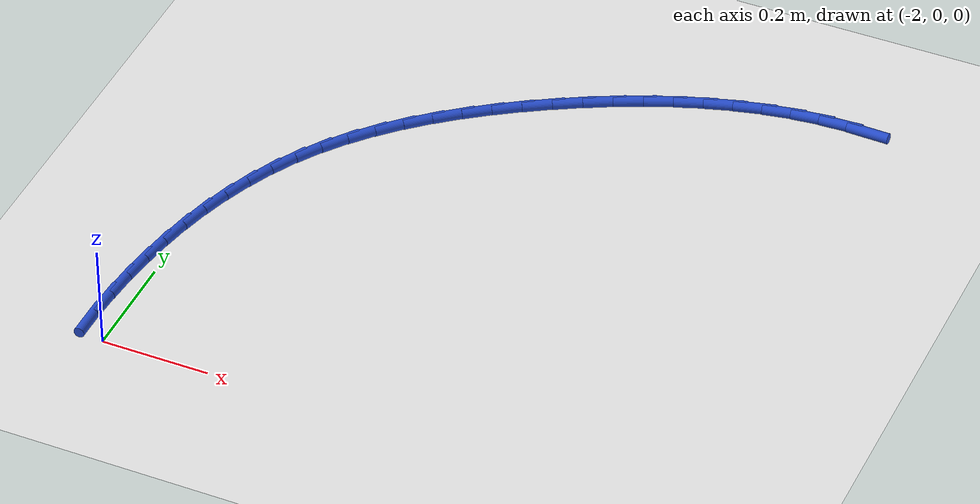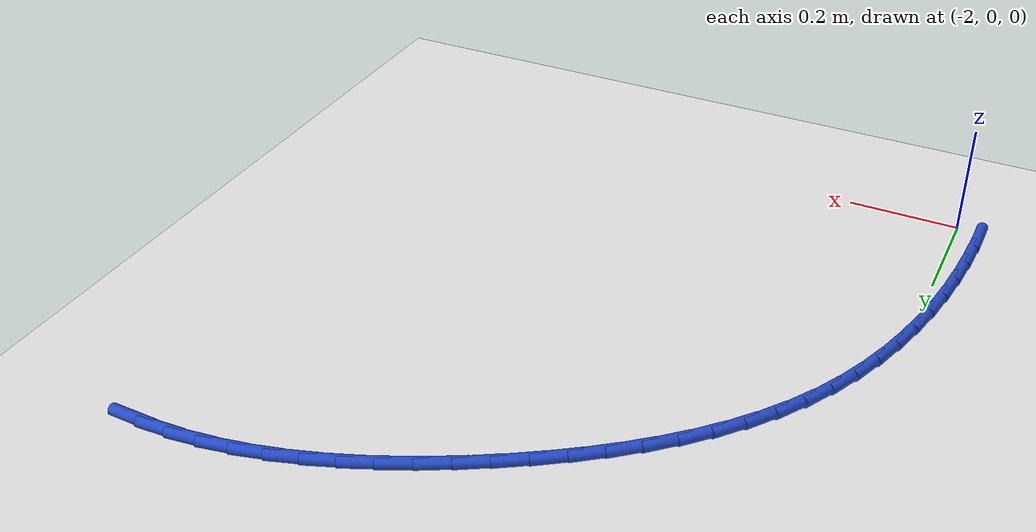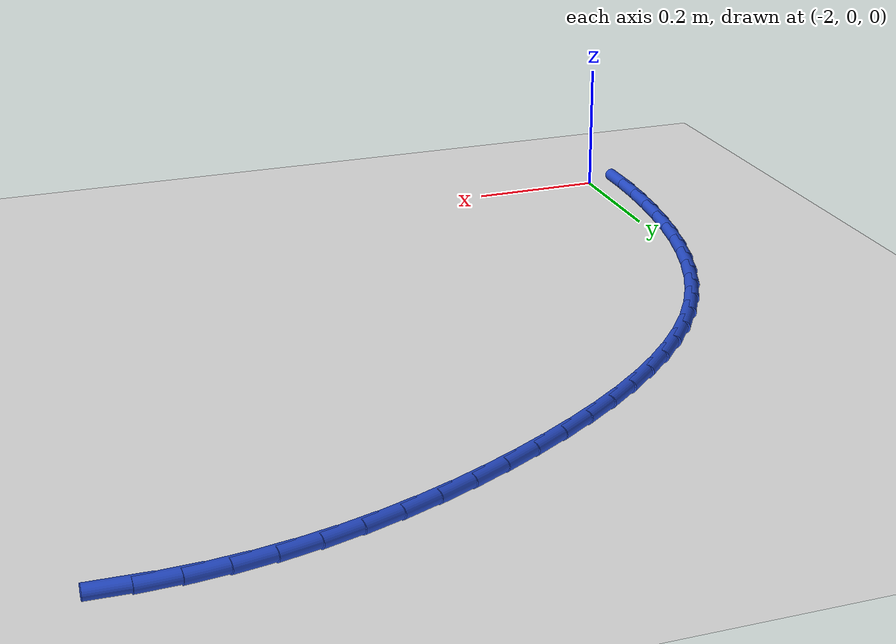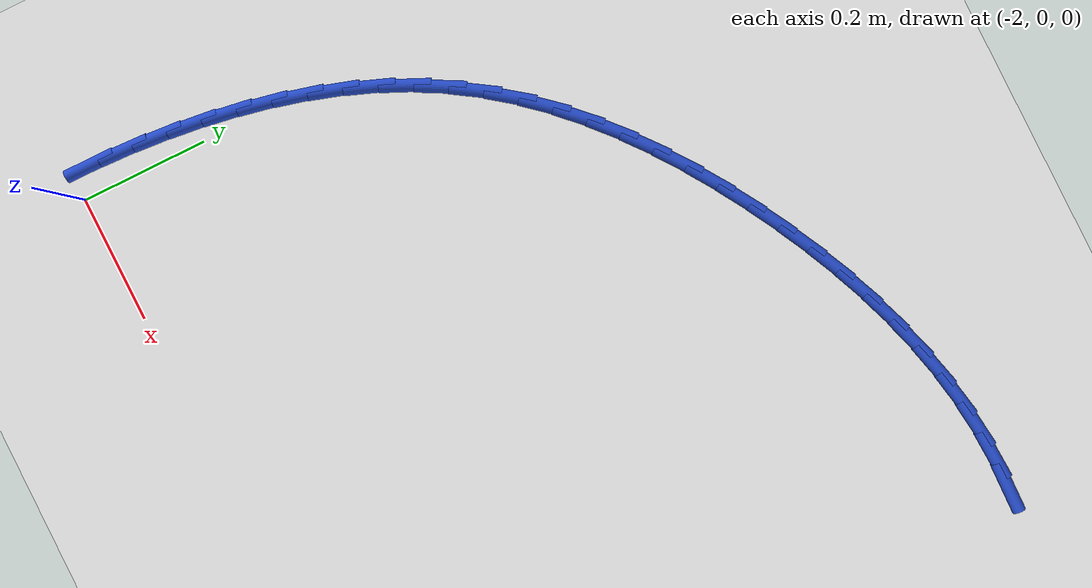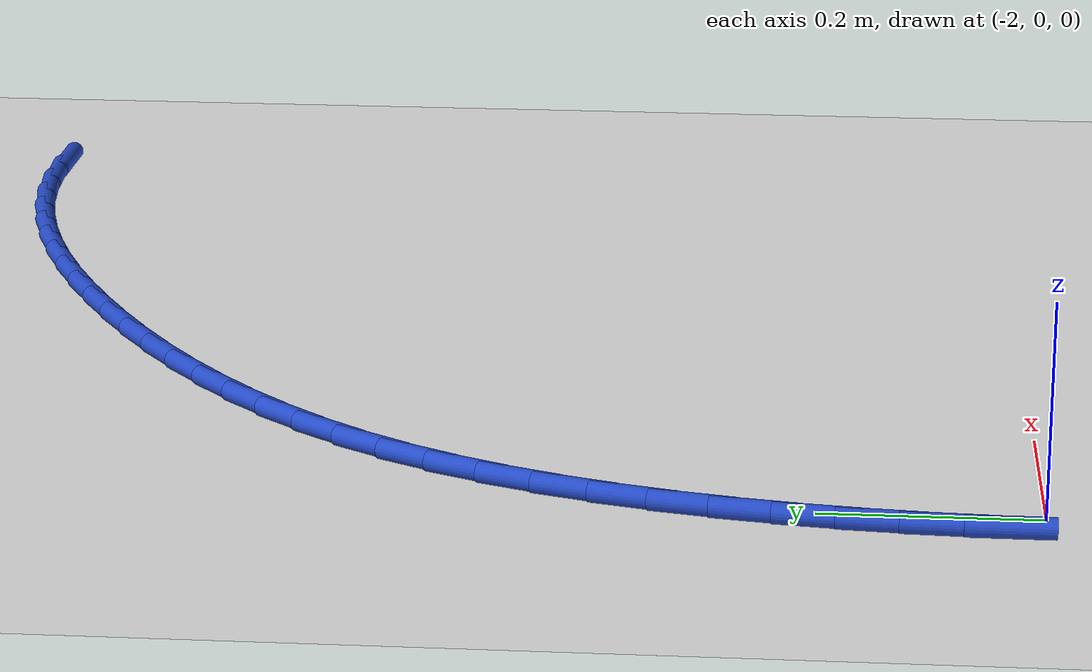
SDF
<sdf version="1.6">
 <world name="default">
  <model name="ground_plane">
   <static>1</static>
   <link name="link">
    <collision name="collision">
     <geometry><plane><normal>0 0 1</normal><size>100 100</size></plane></geometry>
     <surface><friction><ode><mu>100</mu><mu2>50</mu2></ode></friction></surface>
    </collision>
    <visual name="visual">
     <cast_shadows>0</cast_shadows>
     <geometry><plane><normal>0 0 1</normal><size>100 100</size></plane></geometry>
     <material>
      <script><uri>file://media/materials/scripts/gazebo.material</uri><name>Gazebo/WhiteGlow</name></script>
     </material>
    </visual>
   </link>
  </model>
  <model name="line">
   <link name="link_29">
    <pose>-0.9944256447492237 1.051806300788337 0.01 0 1.57 -0.02953381724431411</pose>
    <collision name="collision">
     <geometry><cylinder><radius>0.01</radius><length>0.08</length></cylinder></geometry>
    </collision>
    <visual name="visual">
     <material>
      <script><name>Gazebo/Blue</name><uri>file://media/materials/scripts/gazebo.material</uri></script>
     </material>
     <geometry><cylinder><radius>0.01</radius><length>0.08</length></cylinder></geometry>
    </visual>
   </link>
   <link name="link_30">
    <pose>-1.0477358019644767 1.0533812111587069 0.01 0 1.57 0.045366976856569034</pose>
    <collision name="collision">
     <geometry><cylinder><radius>0.01</radius><length>0.08</length></cylinder></geometry>
    </collision>
    <visual name="visual">
     <material>
      <script><name>Gazebo/Blue</name><uri>file://media/materials/scripts/gazebo.material</uri></script>
     </material>
     <geometry><cylinder><radius>0.01</radius><length>0.08</length></cylinder></geometry>
    </visual>
   </link>
   <link name="link_31">
    <pose>-1.1009183715137079 1.0509668221277468 0.01 0 1.57 0.11822416823645945</pose>
    <collision name="collision">
     <geometry><cylinder><radius>0.01</radius><length>0.08</length></cylinder></geometry>
    </collision>
    <visual name="visual">
     <material>
      <script><name>Gazebo/Blue</name><uri>file://media/materials/scripts/gazebo.material</uri></script>
     </material>
     <geometry><cylinder><radius>0.01</radius><length>0.08</length></cylinder></geometry>
    </visual>
   </link>
   <link name="link_32">
    <pose>-1.153873511683103 1.0446769127940014 0.01 0 1.57 0.1857509949453386</pose>
    <collision name="collision">
     <geometry><cylinder><radius>0.01</radius><length>0.08</length></cylinder></geometry>
    </collision>
    <visual name="visual">
     <material>
      <script><name>Gazebo/Blue</name><uri>file://media/materials/scripts/gazebo.material</uri></script>
     </material>
     <geometry><cylinder><radius>0.01</radius><length>0.08</length></cylinder></geometry>
    </visual>
   </link>
   <link name="link_33">
    <pose>-1.2065222437602299 1.0347833080538897 0.01 0 1.57 0.2478256711107304</pose>
    <collision name="collision">
     <geometry><cylinder><radius>0.01</radius><length>0.08</length></cylinder></geometry>
    </collision>
    <visual name="visual">
     <material>
      <script><name>Gazebo/Blue</name><uri>file://media/materials/scripts/gazebo.material</uri></script>
     </material>
     <geometry><cylinder><radius>0.01</radius><length>0.08</length></cylinder></geometry>
    </visual>
   </link>
   <link name="link_34">
    <pose>-1.2587857719687987 1.0215592186201756 0.01 0 1.57 0.30453744104532304</pose>
    <collision name="collision">
     <geometry><cylinder><radius>0.01</radius><length>0.08</length></cylinder></geometry>
    </collision>
    <visual name="visual">
     <material>
      <script><name>Gazebo/Blue</name><uri>file://media/materials/scripts/gazebo.material</uri></script>
     </material>
     <geometry><cylinder><radius>0.01</radius><length>0.08</length></cylinder></geometry>
    </visual>
   </link>
   <link name="link_35">
    <pose>-1.310585300532518 1.0052778552056236 0.01 0 1.57 0.3561023286541422</pose>
    <collision name="collision">
     <geometry><cylinder><radius>0.01</radius><length>0.08</length></cylinder></geometry>
    </collision>
    <visual name="visual">
     <material>
      <script><name>Gazebo/Blue</name><uri>file://media/materials/scripts/gazebo.material</uri></script>
     </material>
     <geometry><cylinder><radius>0.01</radius><length>0.08</length></cylinder></geometry>
    </visual>
   </link>
   <link name="link_36">
    <pose>-1.3618420336750985 0.9862124285229996 0.01 0 1.57 0.40281277330719234</pose>
    <collision name="collision">
     <geometry><cylinder><radius>0.01</radius><length>0.08</length></cylinder></geometry>
    </collision>
    <visual name="visual">
     <material>
      <script><name>Gazebo/Blue</name><uri>file://media/materials/scripts/gazebo.material</uri></script>
     </material>
     <geometry><cylinder><radius>0.01</radius><length>0.08</length></cylinder></geometry>
    </visual>
   </link>
   <link name="link_37">
    <pose>-1.4124771756202492 0.9646361492850672 0.01 0 1.57 0.4449980184166749</pose>
    <collision name="collision">
     <geometry><cylinder><radius>0.01</radius><length>0.08</length></cylinder></geometry>
    </collision>
    <visual name="visual">
     <material>
      <script><name>Gazebo/Blue</name><uri>file://media/materials/scripts/gazebo.material</uri></script>
     </material>
     <geometry><cylinder><radius>0.01</radius><length>0.08</length></cylinder></geometry>
    </visual>
   </link>
   <link name="link_38">
    <pose>-1.4624119305916794 0.9408222282045913 0.01 0 1.57 0.48299519805333774</pose>
    <collision name="collision">
     <geometry><cylinder><radius>0.01</radius><length>0.08</length></cylinder></geometry>
    </collision>
    <visual name="visual">
     <material>
      <script><name>Gazebo/Blue</name><uri>file://media/materials/scripts/gazebo.material</uri></script>
     </material>
     <geometry><cylinder><radius>0.01</radius><length>0.08</length></cylinder></geometry>
    </visual>
   </link>
   <link name="link_39">
    <pose>-1.511567502813099 0.9150438759943365 0.01 0 1.57 0.5174880324103412</pose>
    <collision name="collision">
     <geometry><cylinder><radius>0.01</radius><length>0.08</length></cylinder></geometry>
    </collision>
    <visual name="visual">
     <material>
      <script><name>Gazebo/Blue</name><uri>file://media/materials/scripts/gazebo.material</uri></script>
     </material>
     <geometry><cylinder><radius>0.01</radius><length>0.08</length></cylinder></geometry>
    </visual>
   </link>
   <link name="link_40">
    <pose>-1.5598551204900255 0.8875570596071061 0.01 0 1.57 0.5528832171886693</pose>
    <collision name="collision">
     <geometry><cylinder><radius>0.01</radius><length>0.08</length></cylinder></geometry>
    </collision>
    <visual name="visual">
     <material>
      <script><name>Gazebo/Blue</name><uri>file://media/materials/scripts/gazebo.material</uri></script>
     </material>
     <geometry><cylinder><radius>0.01</radius><length>0.08</length></cylinder></geometry>
    </visual>
   </link>
   <link name="link_41">
    <pose>-1.6070719268077058 0.8584205476078299 0.01 0 1.57 0.5921093758600232</pose>
    <collision name="collision">
     <geometry><cylinder><radius>0.01</radius><length>0.08</length></cylinder></geometry>
    </collision>
    <visual name="visual">
     <material>
      <script><name>Gazebo/Blue</name><uri>file://media/materials/scripts/gazebo.material</uri></script>
     </material>
     <geometry><cylinder><radius>0.01</radius><length>0.08</length></cylinder></geometry>
    </visual>
   </link>
   <link name="link_42">
    <pose>-1.652942347561375 0.8275674150037133 0.01 0 1.57 0.6355456517853703</pose>
    <collision name="collision">
     <geometry><cylinder><radius>0.01</radius><length>0.08</length></cylinder></geometry>
    </collision>
    <visual name="visual">
     <material>
      <script><name>Gazebo/Blue</name><uri>file://media/materials/scripts/gazebo.material</uri></script>
     </material>
     <geometry><cylinder><radius>0.01</radius><length>0.08</length></cylinder></geometry>
    </visual>
   </link>
   <link name="link_43">
    <pose>-1.6971896357743854 0.7949287096407831 0.01 0 1.57 0.6835380528120774</pose>
    <collision name="collision">
     <geometry><cylinder><radius>0.01</radius><length>0.08</length></cylinder></geometry>
    </collision>
    <visual name="visual">
     <material>
      <script><name>Gazebo/Blue</name><uri>file://media/materials/scripts/gazebo.material</uri></script>
     </material>
     <geometry><cylinder><radius>0.01</radius><length>0.08</length></cylinder></geometry>
    </visual>
   </link>
   <link name="link_44">
    <pose>-1.7395370444700917 0.7604354793650686 0.01 0 1.57 0.7364205479322248</pose>
    <collision name="collision">
     <geometry><cylinder><radius>0.01</radius><length>0.08</length></cylinder></geometry>
    </collision>
    <visual name="visual">
     <material>
      <script><name>Gazebo/Blue</name><uri>file://media/materials/scripts/gazebo.material</uri></script>
     </material>
     <geometry><cylinder><radius>0.01</radius><length>0.08</length></cylinder></geometry>
    </visual>
   </link>
   <link name="link_45">
    <pose>-1.779707826671849 0.7240187720225967 0.01 0 1.57 0.7944844655894827</pose>
    <collision name="collision">
     <geometry><cylinder><radius>0.01</radius><length>0.08</length></cylinder></geometry>
    </collision>
    <visual name="visual">
     <material>
      <script><name>Gazebo/Blue</name><uri>file://media/materials/scripts/gazebo.material</uri></script>
     </material>
     <geometry><cylinder><radius>0.01</radius><length>0.08</length></cylinder></geometry>
    </visual>
   </link>
   <link name="link_46">
    <pose>-1.81742523540301 0.685609635459396 0.01 0 1.57 0.8579368340276491</pose>
    <collision name="collision">
     <geometry><cylinder><radius>0.01</radius><length>0.08</length></cylinder></geometry>
    </collision>
    <visual name="visual">
     <material>
      <script><name>Gazebo/Blue</name><uri>file://media/materials/scripts/gazebo.material</uri></script>
     </material>
     <geometry><cylinder><radius>0.01</radius><length>0.08</length></cylinder></geometry>
    </visual>
   </link>
   <link name="link_47">
    <pose>-1.8524125236869302 0.6451391175214942 0.01 0 1.57 0.9268479440495738</pose>
    <collision name="collision">
     <geometry><cylinder><radius>0.01</radius><length>0.08</length></cylinder></geometry>
    </collision>
    <visual name="visual">
     <material>
      <script><name>Gazebo/Blue</name><uri>file://media/materials/scripts/gazebo.material</uri></script>
     </material>
     <geometry><cylinder><radius>0.01</radius><length>0.08</length></cylinder></geometry>
    </visual>
   </link>
   <link name="link_48">
    <pose>-1.8843929445469625 0.6025382660549193 0.01 0 1.57 1.0009234097086548</pose>
    <collision name="collision">
     <geometry><cylinder><radius>0.01</radius><length>0.08</length></cylinder></geometry>
    </collision>
    <visual name="visual">
     <material>
      <script><name>Gazebo/Blue</name><uri>file://media/materials/scripts/gazebo.material</uri></script>
     </material>
     <geometry><cylinder><radius>0.01</radius><length>0.08</length></cylinder></geometry>
    </visual>
   </link>
   <link name="link_49">
    <pose>-1.9130970497288238 0.5577433445250968 0.01 0 1.57 1.0752251058358309</pose>
    <collision name="collision">
     <geometry><cylinder><radius>0.01</radius><length>0.08</length></cylinder></geometry>
    </collision>
    <visual name="visual">
     <material>
      <script><name>Gazebo/Blue</name><uri>file://media/materials/scripts/gazebo.material</uri></script>
     </material>
     <geometry><cylinder><radius>0.01</radius><length>0.08</length></cylinder></geometry>
    </visual>
   </link>
   <link name="link_50">
    <pose>-1.9384550284278603 0.5108332760169105 0.01 0 1.57 1.144441573513031</pose>
    <collision name="collision">
     <geometry><cylinder><radius>0.01</radius><length>0.08</length></cylinder></geometry>
    </collision>
    <visual name="visual">
     <material>
      <script><name>Gazebo/Blue</name><uri>file://media/materials/scripts/gazebo.material</uri></script>
     </material>
     <geometry><cylinder><radius>0.01</radius><length>0.08</length></cylinder></geometry>
    </visual>
   </link>
   <link name="link_51">
    <pose>-1.9606161336244057 0.4620435251672518 0.01 0 1.57 1.2082939156310266</pose>
    <collision name="collision">
     <geometry><cylinder><radius>0.01</radius><length>0.08</length></cylinder></geometry>
    </collision>
    <visual name="visual">
     <material>
      <script><name>Gazebo/Blue</name><uri>file://media/materials/scripts/gazebo.material</uri></script>
     </material>
     <geometry><cylinder><radius>0.01</radius><length>0.08</length></cylinder></geometry>
    </visual>
   </link>
   <link name="link_52">
    <pose>-1.9797408127936245 0.41161755612600476 0.01 0 1.57 1.2669386447570068</pose>
    <collision name="collision">
     <geometry><cylinder><radius>0.01</radius><length>0.08</length></cylinder></geometry>
    </collision>
    <visual name="visual">
     <material>
      <script><name>Gazebo/Blue</name><uri>file://media/materials/scripts/gazebo.material</uri></script>
     </material>
     <geometry><cylinder><radius>0.01</radius><length>0.08</length></cylinder></geometry>
    </visual>
   </link>
   <link name="link_53">
    <pose>-1.9959895134106806 0.35979883304305527 0.01 0 1.57 1.3206507255928877</pose>
    <collision name="collision">
     <geometry><cylinder><radius>0.01</radius><length>0.08</length></cylinder></geometry>
    </collision>
    <visual name="visual">
     <material>
      <script><name>Gazebo/Blue</name><uri>file://media/materials/scripts/gazebo.material</uri></script>
     </material>
     <geometry><cylinder><radius>0.01</radius><length>0.08</length></cylinder></geometry>
    </visual>
   </link>
   <link name="link_54">
    <pose>-2.0095226829507378 0.30683082006828766 0.01 0 1.57 1.369774598285924</pose>
    <collision name="collision">
     <geometry><cylinder><radius>0.01</radius><length>0.08</length></cylinder></geometry>
    </collision>
    <visual name="visual">
     <material>
      <script><name>Gazebo/Blue</name><uri>file://media/materials/scripts/gazebo.material</uri></script>
     </material>
     <geometry><cylinder><radius>0.01</radius><length>0.08</length></cylinder></geometry>
    </visual>
   </link>
   <link name="link_55">
    <pose>-2.0205007688889616 0.25295698135158773 0.01 0 1.57 1.414686996824047</pose>
    <collision name="collision">
     <geometry><cylinder><radius>0.01</radius><length>0.08</length></cylinder></geometry>
    </collision>
    <visual name="visual">
     <material>
      <script><name>Gazebo/Blue</name><uri>file://media/materials/scripts/gazebo.material</uri></script>
     </material>
     <geometry><cylinder><radius>0.01</radius><length>0.08</length></cylinder></geometry>
    </visual>
   </link>
   <link name="link_56">
    <pose>-2.0290842187005147 0.19842078104283983 0.01 0 1.57 1.4557708852461682</pose>
    <collision name="collision">
     <geometry><cylinder><radius>0.01</radius><length>0.08</length></cylinder></geometry>
    </collision>
    <visual name="visual">
     <material>
      <script><name>Gazebo/Blue</name><uri>file://media/materials/scripts/gazebo.material</uri></script>
     </material>
     <geometry><cylinder><radius>0.01</radius><length>0.08</length></cylinder></geometry>
    </visual>
   </link>
   <link name="link_57">
    <pose>-2.0354334798605627 0.1434656832919296 0.01 0 1.57 1.4934499250864302</pose>
    <collision name="collision">
     <geometry><cylinder><radius>0.01</radius><length>0.08</length></cylinder></geometry>
    </collision>
    <visual name="visual">
     <material>
      <script><name>Gazebo/Blue</name><uri>file://media/materials/scripts/gazebo.material</uri></script>
     </material>
     <geometry><cylinder><radius>0.01</radius><length>0.08</length></cylinder></geometry>
    </visual>
   </link>
   <link name="link_58">
    <pose>-2.039706304988389 0.08833317607022767 0.01 0 1.57 1.5297569964329194</pose>
    <collision name="collision">
     <geometry><cylinder><radius>0.01</radius><length>0.08</length></cylinder></geometry>
    </collision>
    <visual name="visual">
     <material>
      <script><name>Gazebo/Blue</name><uri>file://media/materials/scripts/gazebo.material</uri></script>
     </material>
     <geometry><cylinder><radius>0.01</radius><length>0.08</length></cylinder></geometry>
    </visual>
   </link>
   <link name="link_59">
    <pose>-2.0419702616722373 0.03319861330388808 0.01 0 1.57 1.566921080675964</pose>
    <collision name="collision">
     <geometry><cylinder><radius>0.01</radius><length>0.08</length></cylinder></geometry>
    </collision>
    <visual name="visual">
     <material>
      <script><name>Gazebo/Blue</name><uri>file://media/materials/scripts/gazebo.material</uri></script>
     </material>
     <geometry><cylinder><radius>0.01</radius><length>0.08</length></cylinder></geometry>
    </visual>
   </link>
  </model>
 </world>
</sdf>
